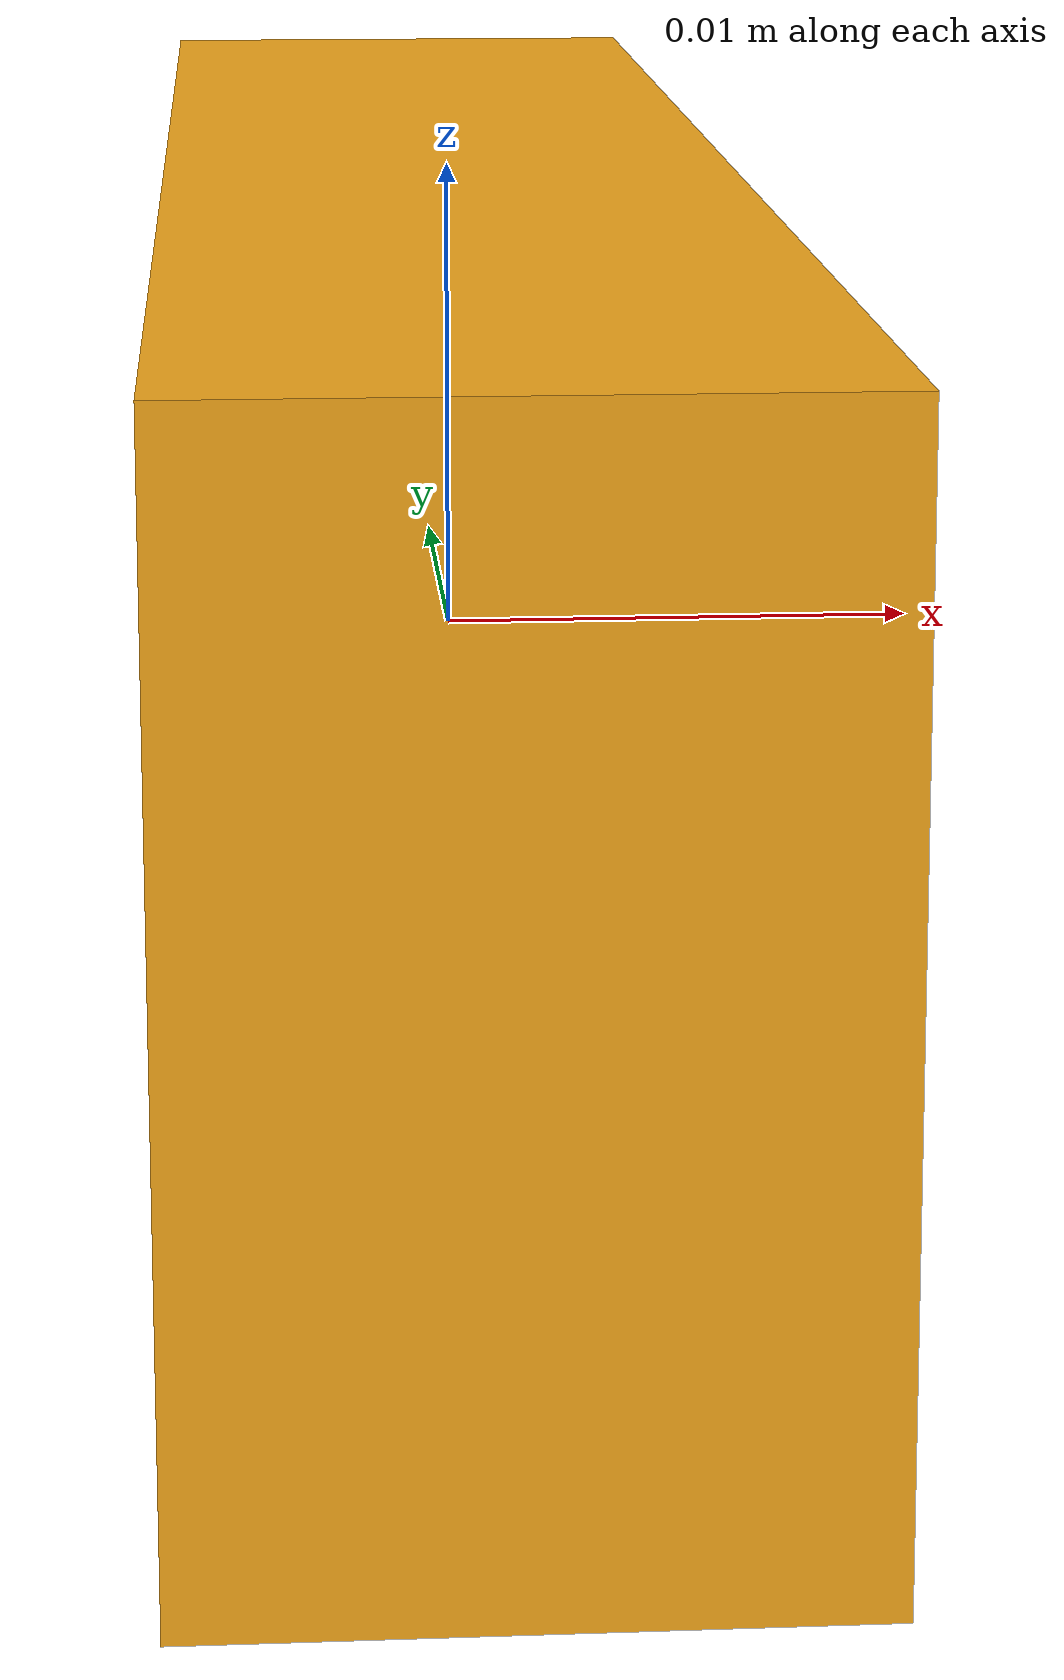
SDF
<?xml version="1.0"?>
<sdf version="1.7">
  <model name="rubiks_static_gauge_057">
    <static>true</static>
    <link name="gauge_link">
      <collision name="gauge_collision">
        <geometry>
          <!-- x depth, known y width, z height -->
          <box><size>0.012 0.057 0.020</size></box>
        </geometry>
        <surface>
          <friction>
            <ode><mu>1.0</mu><mu2>1.0</mu2></ode>
          </friction>
          <bounce><restitution_coefficient>0.0</restitution_coefficient></bounce>
          <contact>
            <collide_without_contact>false</collide_without_contact>
            <ode><max_vel>0.001</max_vel><min_depth>0.00001</min_depth></ode>
          </contact>
        </surface>
      </collision>
      <visual name="gauge_visual">
        <geometry>
          <box><size>0.012 0.057 0.020</size></box>
        </geometry>
        <material>
          <ambient>0.95 0.65 0.10 1</ambient>
          <diffuse>0.95 0.65 0.10 1</diffuse>
          <specular>0.15 0.15 0.15 1</specular>
        </material>
      </visual>
      <sensor name="gauge_contact_sensor" type="contact">
        <always_on>true</always_on>
        <update_rate>500</update_rate>
        <visualize>false</visualize>
        <contact>
          <collision>gauge_collision</collision>
        </contact>
        <plugin name="rubiks_gauge_contact_ros" filename="libgazebo_ros_bumper.so">
          <ros>
            <namespace>/rubiks_gauge</namespace>
            <argument>bumper_states:=contact_states</argument>
          </ros>
          <frame_name>gauge_link</frame_name>
        </plugin>
      </sensor>
    </link>
  </model>
</sdf>
